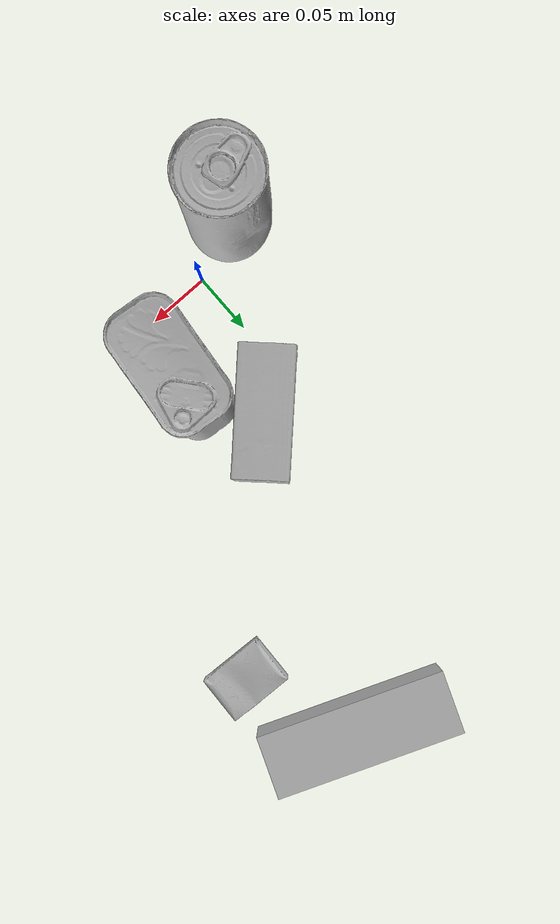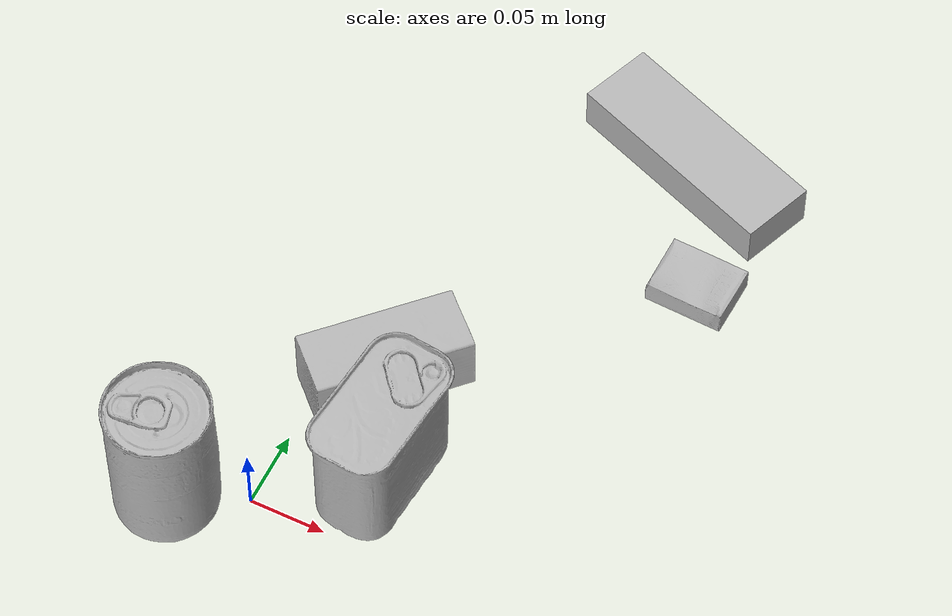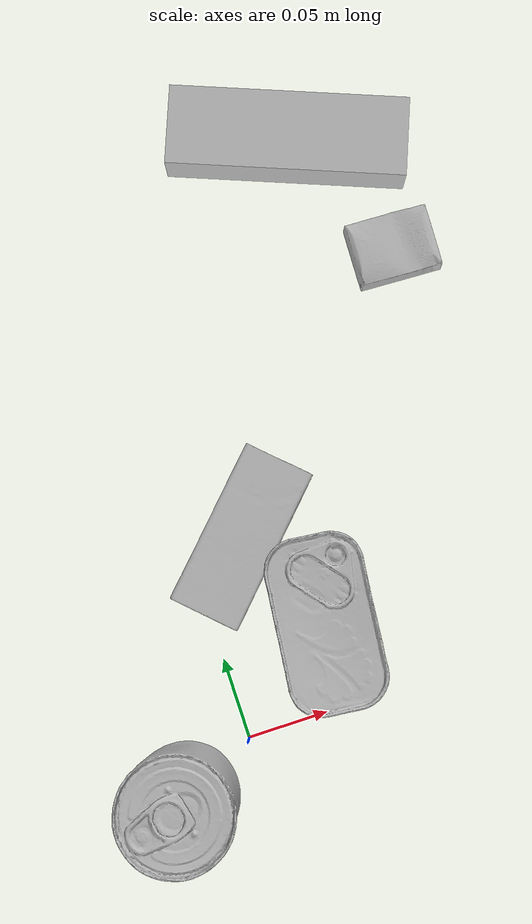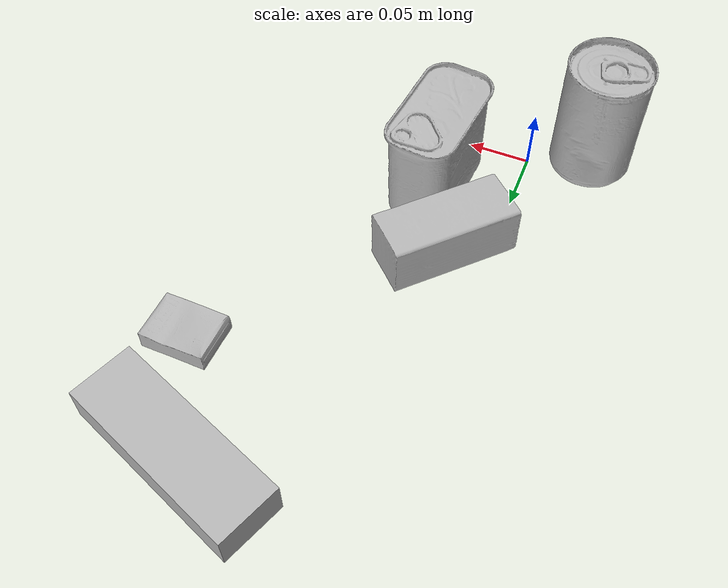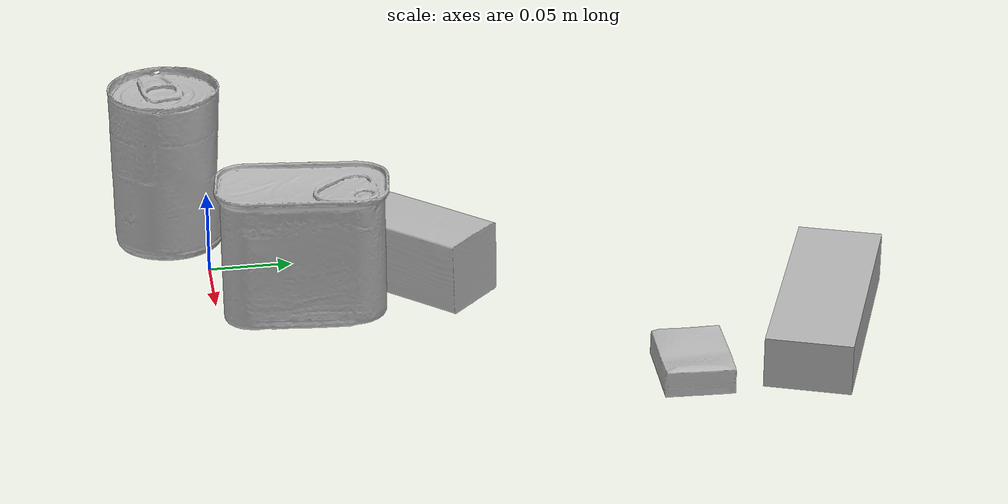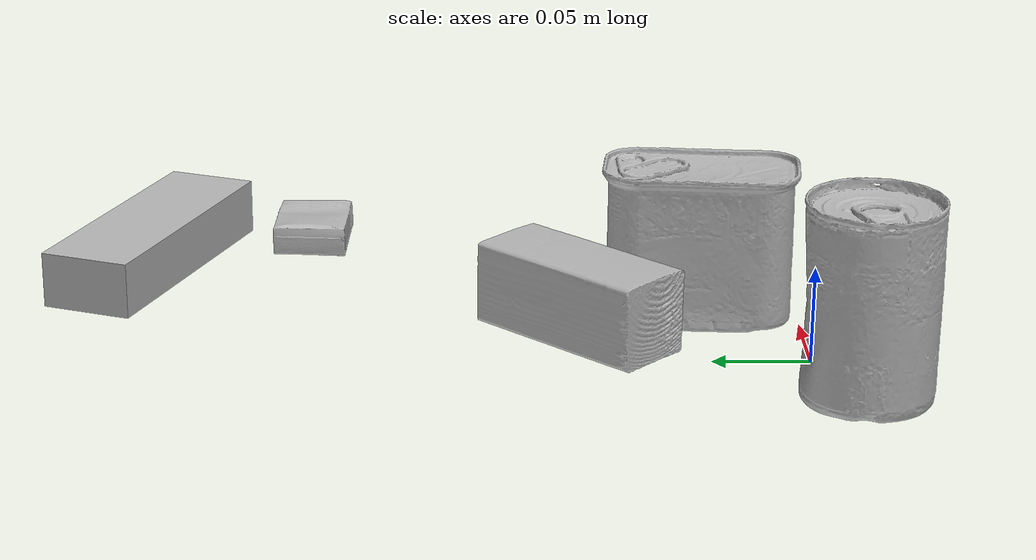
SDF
<sdf version="1.4">
  <world name="default">
    <light name="light1" type="point">
      <pose>0 0 1 0 0 0</pose>
      <diffuse>3 3 3 1</diffuse>
      <specular>3 3 3 1</specular>
    </light>
    <light name="light2" type="point">
      <pose>0 0.5 2 0 0 0</pose>
      <diffuse>1 1 1 1</diffuse>
      <specular>1 1 1 1</specular>
    </light>
    <light name="light3" type="point">
      <pose>0 0.5 2 0 0 0</pose>
      <diffuse>3 3 3 1</diffuse>
      <specular>3 3 3 1</specular>
    </light>
    <scene>
      <ambient>0.7 0.7 0.7</ambient>
    </scene>
    <model name="box1">
      <link name="link_box1">
        <collision name="default">
          <geometry>
            <mesh>
              <uri>model://jenga/collision_meshes/collision.obj</uri>
              <scale>1.0 1.0 1.0</scale>
            </mesh>
          </geometry>
          <surface>
            <friction>
              <ode>
                <mu>0.5</mu>
                <mu2>0.5</mu2>
              </ode>
            </friction>
          <contact>
        <ode>
            <max_vel>0</max_vel>
            <min_depth>0.0001</min_depth>
            <kp>1e8</kp>
        </ode>
    </contact></surface>
        </collision>
        <visual name="default">
          <geometry>
            <mesh>
              <uri>model://jenga/visual_meshes/visual.dae</uri>
              <scale>1.0 1.0 1.0</scale>
            </mesh>
          </geometry>
        </visual>
        <inertial>
          <mass>0.13349448144435883</mass>
          <pose>-2.502855807051674e-07 -0.00010250010382151231 -4.0923401684267446e-05 0.0 -7.342153480750062e-07 0.0</pose>
          <inertia>
            <ixx>3.694116e-05</ixx>
            <iyy>0.0002503123</iyy>
            <izz>0.00026722968</izz>
            <ixy>0</ixy>
            <ixz>0</ixz>
            <iyz>0</iyz>
          </inertia>
        </inertial>
      </link>
      <pose>0.13939186930656433 0.3469853103160858 0.014999998733401299 -1.4216847582387762e-08 -9.494378933447595e-11 -0.3738093017715588</pose>
    </model>
    <model name="box2">
      <link name="link_box2">
        <collision name="default">
          <geometry>
            <mesh>
              <uri>model://cracker_box/collision_meshes/collision.obj</uri>
              <scale>0.25 0.25 0.25</scale>
            </mesh>
          </geometry>
          <surface>
            <friction>
              <ode>
                <mu>0.5</mu>
                <mu2>0.5</mu2>
              </ode>
            </friction>
          <contact>
        <ode>
            <max_vel>0</max_vel>
            <min_depth>0.0001</min_depth>
            <kp>1e8</kp>
        </ode>
    </contact></surface>
        </collision>
        <visual name="default">
          <geometry>
            <mesh>
              <uri>model://cracker_box/visual_meshes/visual.dae</uri>
              <scale>0.25 0.25 0.25</scale>
            </mesh>
          </geometry>
        </visual>
        <inertial>
          <mass>0.02145323157310486</mass>
          <pose>0.00023660292208660394 6.358561950037256e-05 -0.00042573839891701937 -0.00031620765701486096 -0.011106487737550933 0.0025467954675071156</pose>
          <inertia>
            <ixx>3.4104648e-06</ixx>
            <iyy>5.631348e-06</iyy>
            <izz>8.036451e-06</izz>
            <ixy>0</ixy>
            <ixz>0</ixz>
            <iyz>0</iyz>
          </inertia>
        </inertial>
      </link>
      <pose>0.1802711933851242 0.26007503271102905 0.009120449423789978 -0.011787887034575548 -0.0073671433061829675 3.1002082104522133</pose>
    </model>
    <model name="box3">
      <link name="link_box3">
        <collision name="default">
          <geometry>
            <mesh>
              <uri>model://wood_block/collision_meshes/collision.obj</uri>
              <scale>0.5 0.5 0.5</scale>
            </mesh>
          </geometry>
          <surface>
            <friction>
              <ode>
                <mu>0.5</mu>
                <mu2>0.5</mu2>
              </ode>
            </friction>
          <contact>
        <ode>
            <max_vel>0</max_vel>
            <min_depth>0.0001</min_depth>
            <kp>1e8</kp>
        </ode>
    </contact></surface>
        </collision>
        <visual name="default">
          <geometry>
            <mesh>
              <uri>model://wood_block/visual_meshes/visual.dae</uri>
              <scale>0.5 0.5 0.5</scale>
            </mesh>
          </geometry>
        </visual>
        <inertial>
          <mass>0.16313479840755463</mass>
          <pose>-2.9066577553749084e-06 -0.000285404734313488 0.00013204291462898254 -0.05221116552051519 -0.005192696094342747 -0.006861377806143115</pose>
          <inertia>
            <ixx>5.457476e-05</ixx>
            <iyy>0.00017240169</iyy>
            <izz>0.00017175681</izz>
            <ixy>0</ixy>
            <ixz>0</ixz>
            <iyz>0</iyz>
          </inertia>
        </inertial>
      </link>
      <pose>0.0340377502143383 0.11536633968353271 0.02258366346359253 -0.005711399819728774 0.007958943731410428 -2.3385395881211406</pose>
    </model>
    <model name="can1">
      <link name="link_can1">
        <collision name="default">
          <geometry>
            <mesh>
              <uri>model://potted_meat_can/collision_meshes/collision.obj</uri>
              <scale>1.0 1.0 1.0</scale>
            </mesh>
          </geometry>
          <surface>
            <friction>
              <ode>
                <mu>0.5</mu>
                <mu2>0.5</mu2>
              </ode>
            </friction>
          <contact>
        <ode>
            <max_vel>0</max_vel>
            <min_depth>0.0001</min_depth>
            <kp>1e8</kp>
        </ode>
    </contact></surface>
        </collision>
        <visual name="default">
          <geometry>
            <mesh>
              <uri>model://potted_meat_can/visual_meshes/visual.dae</uri>
              <scale>1.0 1.0 1.0</scale>
            </mesh>
          </geometry>
        </visual>
        <inertial>
          <mass>0.5782443881034851</mass>
          <pose>0.00022888134117238224 -5.989118290017359e-05 -0.0006367441383190453 -0.028093373189925445 -0.007232601430987569 0.015406267190211613</pose>
          <inertia>
            <ixx>0.0007438508</ixx>
            <iyy>0.00045194585</iyy>
            <izz>0.0005410098</izz>
            <ixy>0</ixy>
            <ixz>0</ixz>
            <iyz>0</iyz>
          </inertia>
        </inertial>
      </link>
      <pose>0.06424687802791595 0.05173198878765106 0.04212799668312073 -8.186742180014468e-08 -4.425857922361986e-06 3.0303881351019677</pose>
    </model>
    <model name="can2">
      <link name="link_can2">
        <collision name="default">
          <geometry>
            <mesh>
              <uri>model://tomato_soup_can/collision_meshes/collision.obj</uri>
              <scale>1.0 1.0 1.0</scale>
            </mesh>
          </geometry>
          <surface>
            <friction>
              <ode>
                <mu>0.5</mu>
                <mu2>0.5</mu2>
              </ode>
            </friction>
          <contact>
        <ode>
            <max_vel>0</max_vel>
            <min_depth>0.0001</min_depth>
            <kp>1e8</kp>
        </ode>
    </contact></surface>
        </collision>
        <visual name="default">
          <geometry>
            <mesh>
              <uri>model://tomato_soup_can/visual_meshes/visual.dae</uri>
              <scale>1.0 1.0 1.0</scale>
            </mesh>
          </geometry>
        </visual>
        <inertial>
          <mass>0.191082164645195</mass>
          <pose>0.00012652273289859295 0.00010805522470036522 -0.0017973986687138677 0.007020071598615513 0.0004229929517945175 -0.009903241323856832</pose>
          <inertia>
            <ixx>0.0002095054</ixx>
            <iyy>0.00020829454</iyy>
            <izz>0.0001085847</izz>
            <ixy>0</ixy>
            <ixz>0</ixz>
            <iyz>0</iyz>
          </inertia>
        </inertial>
      </link>
      <pose>-0.04706958681344986 -0.02051340416073799 0.05127400532364845 -3.6897306037639676e-07 -5.306991128403193e-07 -1.611571076840275</pose>
    </model>
  <physics type="ode">
      <max_contacts>50</max_contacts>
      <ode>
        <solver>
          <type>quick</type>
          <iters>75</iters>
        </solver>
        <constraints>
          <contact_max_correcting_vel>0</contact_max_correcting_vel>
          <contact_surface_layer>0</contact_surface_layer>
        </constraints>
      </ode>
    </physics></world>
</sdf>
